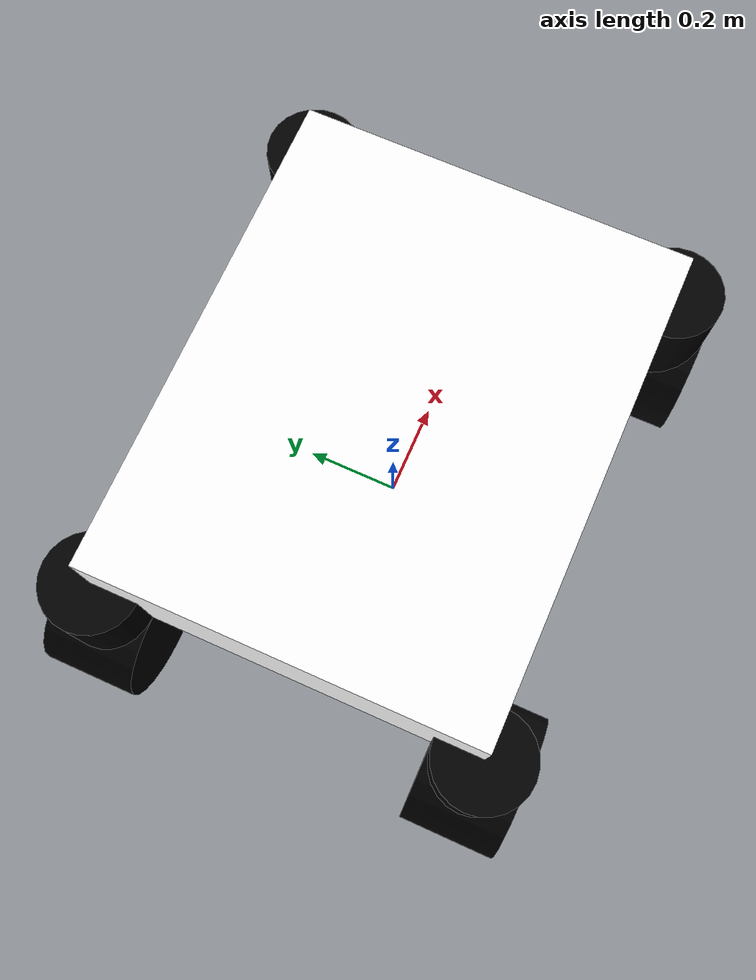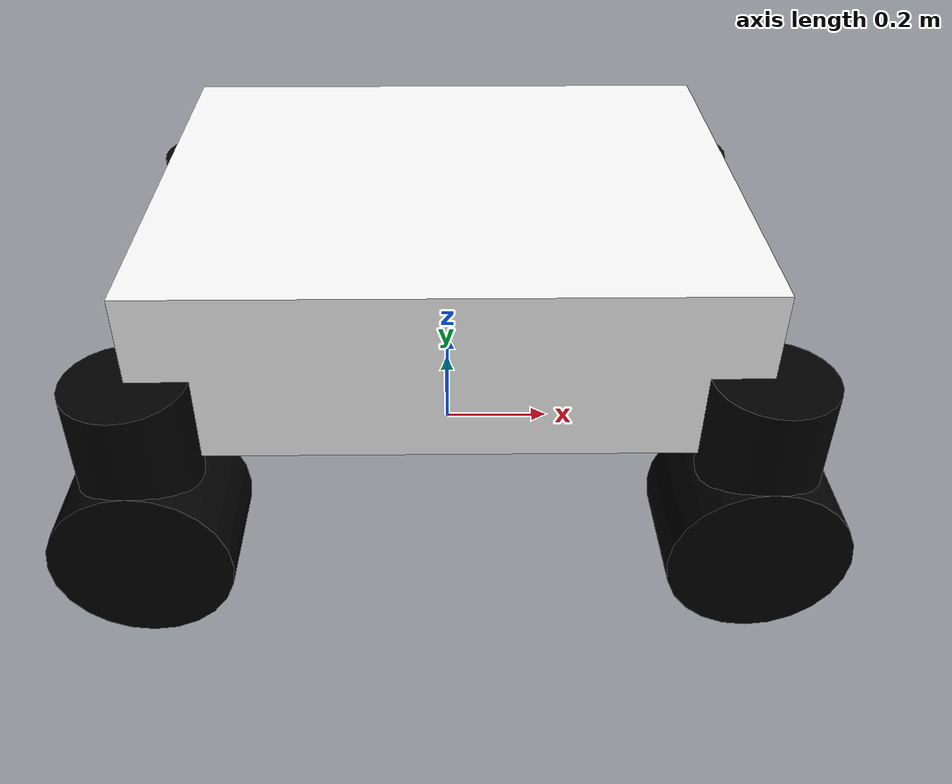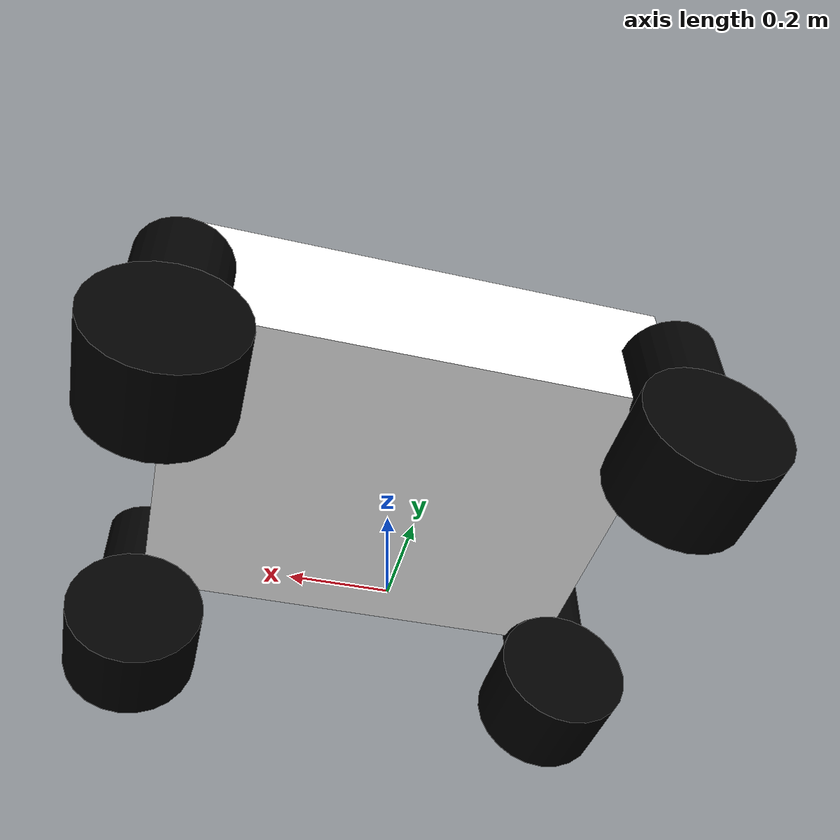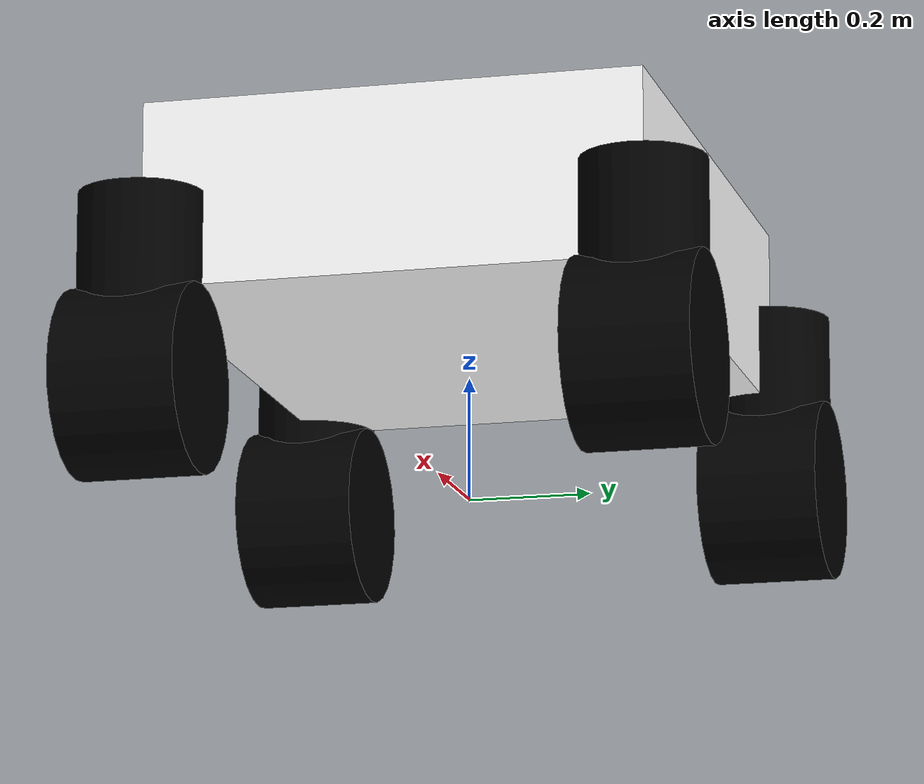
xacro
<?xml version="1.0"?>
<robot xmlns:xacro="http://ros.org/wiki/xacro">

  <xacro:include filename="inertial_macros.xacro"/>

  <material name="white">
    <color rgba="1 1 1 1"/>
  </material>

  <material name="black">
    <color rgba="0 0 0 1"/>
  </material>

  <material name="red">
    <color rgba="1 0 0 1"/>
  </material>

  <!-- base link -->
  <link name="base_link">
  </link>

  <!-- base_foot_link-->
  <joint name="base_foot_joint" type="fixed">
    <parent link="base_link"/>
    <child link="base_foot_link"/>
    <origin xyz="0 0 0" rpy="0 0 0"/>
  </joint>

  <link name="base_foot_link">
  </link>

  <!--chassis link-->

  <joint name= "chassis_joint" type="fixed">
    <parent link="base_link"/>
    <child link="chassis_link"/>
    <origin xyz="0 0 0.4" rpy="0 0 0"/>
  </joint>

  <link name="chassis_link">
    <visual>
      <origin xyz ="0 0 0"/>
      <geometry>
        <box size="1.0 0.8 0.3"/>
      </geometry>
      <material name="white"/>
    </visual>
    <collision>
      <origin xyz ="0 0 0"/>
      <geometry>
        <box size="1.0 0.8 0.3"/>
      </geometry>
    </collision>
    <xacro:inertial_box mass="3.0" x="1.0" y="0.8" z="0.3">
      <origin xyz="0 0 0" rpy="0 0 0"/>
    </xacro:inertial_box>
  </link>

  <gazebo reference="chassis_link">
    <material>Gazebo/White</material>
  </gazebo>

  <!-- left_front_steering-->

  <joint name="left_front_steering_joint" type="continuous">
    <parent link="chassis_link"/>
    <child link="left_front_steering_link"/>
    <origin xyz="0.5 0.4 -0.15" rpy="0 0 0"/>
    <axis xyz="0 0 1"/>
  </joint>

  <link name="left_front_steering_link">
    <visual>
      <geometry>
        <cylinder radius="0.1" length="0.3"/>
      </geometry>
      <material name="black"/>
    </visual>
    <collision>
      <geometry>
        <cylinder radius="0.1" length="0.3"/>
      </geometry>
    </collision>
    <xacro:inertial_cylinder mass="0.25" length="0.3" radius="0.1">
      <origin xyz="0 0 0" rpy="0 0 0"/>
    </xacro:inertial_cylinder>
  </link>

  <gazebo reference="left_front_steering_link">
    <material>Gazebo/Red</material>
  </gazebo>

<!-- left_front_wheel-->
  <joint name="left_front_wheel_joint" type="continuous">
    <parent link="left_front_steering_link"/>
    <child link="left_front_wheel_link"/>
    <origin xyz="0 0 -0.15" rpy="${-pi/2} 0 0"/>
    <axis xyz="0 0 1"/>
  </joint>

  <link name="left_front_wheel_link">
    <visual>
      <geometry>
        <cylinder radius ="0.15" length="0.2"/>
      </geometry>
      <material name="black"/>
    </visual>
    <collision>
      <geometry>
        <cylinder radius ="0.15" length="0.2"/>
      </geometry>
    </collision>
    <xacro:inertial_cylinder mass="0.5" length="0.2" radius="0.15">
      <origin xyz="0 0 0" rpy="0 0 0"/>
    </xacro:inertial_cylinder>
  </link>
  <gazebo reference="left_front_wheel_link">
    <material>Gazebo/Black</material>
  </gazebo>

  <!-- right_front_steering-->

  <joint name="right_front_steering_joint" type="continuous">
    <parent link="chassis_link"/>
    <child link="right_front_steering_link"/>
    <origin xyz="0.5 -0.4 -0.15" rpy="0 0 0"/>
    <axis xyz="0 0 1"/>
  </joint>

  <link name="right_front_steering_link">
    <visual>
      <geometry>
        <cylinder radius="0.1" length="0.3"/>
      </geometry>
      <material name="black"/>
    </visual>
    <collision>
      <geometry>
        <cylinder radius="0.1" length="0.3"/>
      </geometry>
    </collision>
    <xacro:inertial_cylinder mass="0.25" length="0.3" radius="0.1">
      <origin xyz="0 0 0" rpy="0 0 0"/>
    </xacro:inertial_cylinder>
  </link>
  <gazebo reference="right_front_steering_link">
    <material>Gazebo/Red</material>
  </gazebo>

<!-- right_front_wheel-->
  <joint name="right_front_wheel_joint" type="continuous">
    <parent link="right_front_steering_link"/>
    <child link="right_front_wheel_link"/>
    <origin xyz="0 0 -0.15" rpy="${-pi/2} 0 0"/>
    <axis xyz="0 0 1"/>
  </joint>

  <link name="right_front_wheel_link">
    <visual>
      <geometry>
        <cylinder radius ="0.15" length="0.2"/>
      </geometry>
      <material name="black"/>
    </visual>
    <collision>
      <geometry>
        <cylinder radius ="0.15" length="0.2"/>
      </geometry>
    </collision>
    <xacro:inertial_cylinder mass="0.5" length="0.2" radius="0.15">
      <origin xyz="0 0 0" rpy="0 0 0"/>
    </xacro:inertial_cylinder>

  </link>
  <gazebo reference="right_front_wheel_link">
    <material>Gazebo/Black</material>
  </gazebo>

  <!-- left_back_steering-->
  <joint name="left_back_steering_joint" type="continuous">
    <parent link="chassis_link"/>
    <child link="left_back_steering_link"/>
    <origin xyz="-0.5 0.4 -0.15" rpy="0 0 0"/>
    <axis xyz="0 0 1"/>
  </joint>

  <link name="left_back_steering_link">
    <visual>
      <geometry>
        <cylinder radius="0.1" length="0.3"/>
      </geometry>
      <material name="black"/>
    </visual>
    <collision>
      <geometry>
        <cylinder radius="0.1" length="0.3"/>
      </geometry>
    </collision>
    <xacro:inertial_cylinder mass="0.25" length="0.3" radius="0.1">
      <origin xyz="0 0 0" rpy="0 0 0"/>
    </xacro:inertial_cylinder>
  </link>
  <gazebo reference="left_back_steering_link">
    <material>Gazebo/Red</material>
  </gazebo>

<!-- left_back_wheel-->
  <joint name="left_back_wheel_joint" type="continuous">
    <parent link="left_back_steering_link"/>
    <child link="left_back_wheel_link"/>
    <origin xyz="0 0 -0.15" rpy="${-pi/2} 0 0"/>
    <axis xyz="0 0 1"/>
  </joint>

  <link name="left_back_wheel_link">
    <visual>
      <geometry>
        <cylinder radius ="0.15" length="0.2"/>
      </geometry>
      <material name="black"/>
    </visual>
    <collision>
      <geometry>
        <cylinder radius ="0.15" length="0.2"/>
      </geometry>
    </collision>
    <xacro:inertial_cylinder mass="0.5" length="0.2" radius="0.15">
      <origin xyz="0 0 0" rpy="0 0 0"/>
    </xacro:inertial_cylinder>

  </link>
  <gazebo reference="left_back_wheel_link">
    <material>Gazebo/Black</material>
  </gazebo>

  <!-- right_back_steering-->
  <joint name="right_back_steering_joint" type="continuous">
    <parent link="chassis_link"/>
    <child link="right_back_steering_link"/>
    <origin xyz="-0.5 -0.4 -0.15" rpy="0 0 0"/>
    <axis xyz="0 0 1"/>
  </joint>
  <link name="right_back_steering_link">
    <visual>
      <geometry>
        <cylinder radius="0.1" length="0.3"/>
      </geometry>
      <material name="black"/>
    </visual>
    <collision>
      <geometry>
        <cylinder radius="0.1" length="0.3"/>
      </geometry>
    </collision>
    <xacro:inertial_cylinder mass="0.25" length="0.3" radius="0.1">
      <origin xyz="0 0 0" rpy="0 0 0"/>
    </xacro:inertial_cylinder>
  </link>

  <gazebo reference="right_back_steering_link">
    <material>Gazebo/Red</material>
  </gazebo>

<!-- right_back_wheel-->
  <joint name="right_back_wheel_joint" type="continuous">
    <parent link="right_back_steering_link"/>
    <child link="right_back_wheel_link"/>
    <origin xyz="0 0 -0.15" rpy="${-pi/2} 0 0"/>
    <axis xyz="0 0 1"/>
  </joint>

  <link name="right_back_wheel_link">
    <visual>
      <geometry>
        <cylinder radius ="0.15" length="0.2"/>
      </geometry>
      <material name="black"/>
    </visual>
    <collision>
      <geometry>
        <cylinder radius ="0.15" length="0.2"/>
      </geometry>
    </collision>
    <xacro:inertial_cylinder mass="0.5" length="0.2" radius="0.15">
      <origin xyz="0 0 0" rpy="0 0 0"/>
    </xacro:inertial_cylinder>
  </link>

  <gazebo reference="right_back_wheel_link">
    <material>Gazebo/Black</material>
  </gazebo>
  <gazebo reference="right_back_wheel_link">
    <material>Gazebo/Black</material>
  </gazebo>

  <!-- ↓↓↓ ここから追加 ↓↓↓ -->

  <!-- Ground Truth Odometry Plugin -->
  <gazebo>
    <plugin name="ground_truth_odometry" filename="libgazebo_ros_p3d.so">
      <ros>
        <namespace>/</namespace>
        <remapping>odom:=ground_truth/odom</remapping>
      </ros>
      <update_rate>50.0</update_rate>
      <body_name>base_link</body_name>
      <frame_name>world</frame_name>
      <gaussian_noise>0.0</gaussian_noise>
    </plugin>
  </gazebo>

  <!-- ↑↑↑ ここまで追加 ↑↑↑ -->

</robot>
